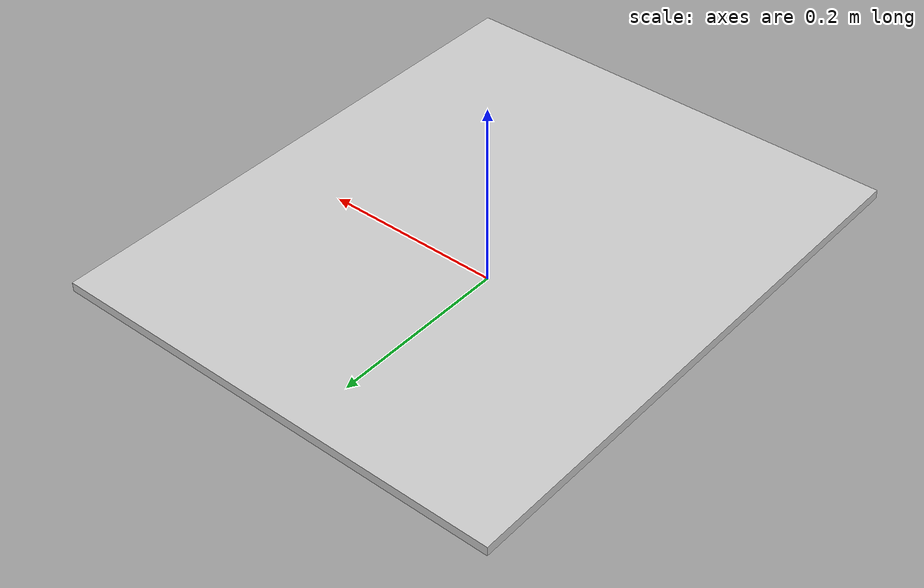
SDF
<?xml version="1.0"?>
<sdf version="1.6">
  <model name="rwc2015/old/sink">
    <link name="1_link">
      <collision name="1_col">
        <geometry>
          <box>
            <size>0.5 0.6 0.01</size>
          </box>
        </geometry>
      </collision>
      <visual name="1_vis">
        <geometry>
          <box>
            <size>0.5 0.6 0.01</size>
          </box>
        </geometry>
        <material>
          <ambient>0.8 0.8 0.8 1</ambient>
        </material>
      </visual>
      <pose>0.0 0.0 0.05 0 0 0</pose>
    </link>
    <static>true</static>
  </model>
</sdf>
